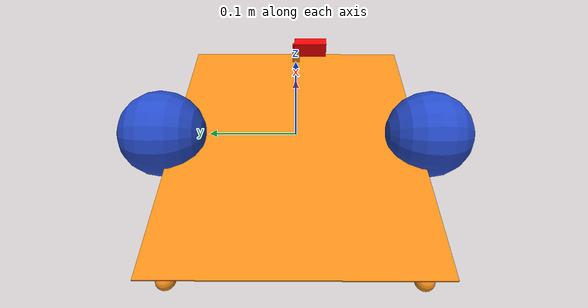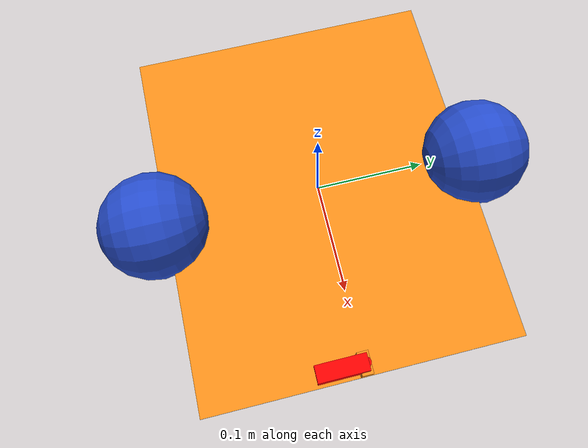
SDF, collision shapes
<sdf version='1.9'>
  <model name='gdgu_robot'>
    <link name='base_link'>
      <inertial>
        <pose>0.0422115384615384 0 -0.01259615384615384 0 0 0</pose>
        <mass>1.04</mass>
        <inertia>
          <ixx>0.01051322371794872</ixx>
          <ixy>0</ixy>
          <ixz>-0.0012019711538461531</ixz>
          <iyy>0.038237637179487208</iyy>
          <iyz>0</iyz>
          <izz>0.048496013461538499</izz>
        </inertia>
      </inertial>
      <collision name='base_link_fixed_joint_lump__chassis_link_collision'>
        <pose>0 0 -0.009000000000000001 0 0 0</pose>
        <geometry>
          <box>
            <size>0.35 0.29 0.002</size>
          </box>
        </geometry>
        <surface>
          <contact>
            <ode/>
          </contact>
          <friction>
            <ode/>
          </friction>
        </surface>
      </collision>
      <collision name='base_link_fixed_joint_lump__caster_wheel1_link_collision_1'>
        <pose>-0.16 0.125 -0.04 0 0 0</pose>
        <geometry>
          <sphere>
            <radius>0.01</radius>
          </sphere>
        </geometry>
        <surface>
          <contact>
            <ode/>
          </contact>
          <friction>
            <ode>
              <mu>0.001</mu>
              <mu2>0.001</mu2>
            </ode>
          </friction>
        </surface>
      </collision>
      <collision name='base_link_fixed_joint_lump__connector_cw1_link_collision_2'>
        <pose>-0.16 0.125 -0.02 0 0 0</pose>
        <geometry>
          <cylinder>
            <length>0.021999999999999999</length>
            <radius>0.0050000000000000001</radius>
          </cylinder>
        </geometry>
      </collision>
      <collision name='base_link_fixed_joint_lump__caster_wheel2_link_collision_3'>
        <pose>-0.16 -0.125 -0.04 0 0 0</pose>
        <geometry>
          <sphere>
            <radius>0.01</radius>
          </sphere>
        </geometry>
        <surface>
          <contact>
            <ode/>
          </contact>
          <friction>
            <ode>
              <mu>0.001</mu>
              <mu2>0.001</mu2>
            </ode>
          </friction>
        </surface>
      </collision>
      <collision name='base_link_fixed_joint_lump__connector_cw2_link_collision_4'>
        <pose>-0.16 -0.125 -0.02 0 0 0</pose>
        <geometry>
          <cylinder>
            <length>0.021999999999999999</length>
            <radius>0.0050000000000000001</radius>
          </cylinder>
        </geometry>
      </collision>
      <collision name='base_link_fixed_joint_lump__caster_wheel3_link_collision_5'>
        <pose>0.13 0.125 -0.04 0 0 0</pose>
        <geometry>
          <sphere>
            <radius>0.01</radius>
          </sphere>
        </geometry>
        <surface>
          <contact>
            <ode/>
          </contact>
          <friction>
            <ode>
              <mu>0.001</mu>
              <mu2>0.001</mu2>
            </ode>
          </friction>
        </surface>
      </collision>
      <collision name='base_link_fixed_joint_lump__connector_cw3_link_collision_6'>
        <pose>0.13 0.125 -0.02 0 0 0</pose>
        <geometry>
          <cylinder>
            <length>0.021999999999999999</length>
            <radius>0.0050000000000000001</radius>
          </cylinder>
        </geometry>
      </collision>
      <collision name='base_link_fixed_joint_lump__caster_wheel4_link_collision_7'>
        <pose>0.13 -0.125 -0.04 0 0 0</pose>
        <geometry>
          <sphere>
            <radius>0.01</radius>
          </sphere>
        </geometry>
        <surface>
          <contact>
            <ode/>
          </contact>
          <friction>
            <ode>
              <mu>0.001</mu>
              <mu2>0.001</mu2>
            </ode>
          </friction>
        </surface>
      </collision>
      <collision name='base_link_fixed_joint_lump__connector_cw4_link_collision_8'>
        <pose>0.13 -0.125 -0.02 0 0 0</pose>
        <geometry>
          <cylinder>
            <length>0.021999999999999999</length>
            <radius>0.0050000000000000001</radius>
          </cylinder>
        </geometry>
      </collision>
      <collision name='base_link_fixed_joint_lump__stepper_link_collision_9'>
        <pose>0.165 0 0 0 0 0</pose>
        <geometry>
          <box>
            <size>0.02 0.01 0.02</size>
          </box>
        </geometry>
        <surface>
          <contact>
            <ode/>
          </contact>
          <friction>
            <ode/>
          </friction>
        </surface>
      </collision>
      <visual name='base_link_fixed_joint_lump__chassis_link_visual'>
        <pose>0 0 -0.009000000000000001 0 0 0</pose>
        <geometry>
          <box>
            <size>0.35 0.29 0.002</size>
          </box>
        </geometry>
        <material>
          <script>
            <name>Gazebo/Orange</name>
            <uri>file://media/materials/scripts/gazebo.material</uri>
          </script>
          <diffuse>1 0.375 0.125 1</diffuse>
          <ambient>1 0.375 0.125 1</ambient>
        </material>
      </visual>
      <visual name='base_link_fixed_joint_lump__caster_wheel1_link_visual_1'>
        <pose>-0.16 0.125 -0.04 0 0 0</pose>
        <geometry>
          <sphere>
            <radius>0.01</radius>
          </sphere>
        </geometry>
        <material>
          <script>
            <name>Gazebo/Red</name>
            <uri>file://media/materials/scripts/gazebo.material</uri>
          </script>
          <diffuse>1 1 1 1</diffuse>
          <ambient>1 1 1 1</ambient>
        </material>
      </visual>
      <visual name='base_link_fixed_joint_lump__connector_cw1_link_visual_2'>
        <pose>-0.16 0.125 -0.02 0 0 0</pose>
        <geometry>
          <cylinder>
            <length>0.021999999999999999</length>
            <radius>0.0050000000000000001</radius>
          </cylinder>
        </geometry>
        <material>
          <diffuse>0 0 0 1</diffuse>
          <ambient>0 0 0 1</ambient>
        </material>
      </visual>
      <visual name='base_link_fixed_joint_lump__caster_wheel2_link_visual_3'>
        <pose>-0.16 -0.125 -0.04 0 0 0</pose>
        <geometry>
          <sphere>
            <radius>0.01</radius>
          </sphere>
        </geometry>
        <material>
          <script>
            <name>Gazebo/Red</name>
            <uri>file://media/materials/scripts/gazebo.material</uri>
          </script>
          <diffuse>1 1 1 1</diffuse>
          <ambient>1 1 1 1</ambient>
        </material>
      </visual>
      <visual name='base_link_fixed_joint_lump__connector_cw2_link_visual_4'>
        <pose>-0.16 -0.125 -0.02 0 0 0</pose>
        <geometry>
          <cylinder>
            <length>0.021999999999999999</length>
            <radius>0.0050000000000000001</radius>
          </cylinder>
        </geometry>
        <material>
          <diffuse>0 0 0 1</diffuse>
          <ambient>0 0 0 1</ambient>
        </material>
      </visual>
      <visual name='base_link_fixed_joint_lump__caster_wheel3_link_visual_5'>
        <pose>0.13 0.125 -0.04 0 0 0</pose>
        <geometry>
          <sphere>
            <radius>0.01</radius>
          </sphere>
        </geometry>
        <material>
          <script>
            <name>Gazebo/Red</name>
            <uri>file://media/materials/scripts/gazebo.material</uri>
          </script>
          <diffuse>1 1 1 1</diffuse>
          <ambient>1 1 1 1</ambient>
        </material>
      </visual>
      <visual name='base_link_fixed_joint_lump__connector_cw3_link_visual_6'>
        <pose>0.13 0.125 -0.02 0 0 0</pose>
        <geometry>
          <cylinder>
            <length>0.021999999999999999</length>
            <radius>0.0050000000000000001</radius>
          </cylinder>
        </geometry>
        <material>
          <diffuse>0 0 0 1</diffuse>
          <ambient>0 0 0 1</ambient>
        </material>
      </visual>
      <visual name='base_link_fixed_joint_lump__caster_wheel4_link_visual_7'>
        <pose>0.13 -0.125 -0.04 0 0 0</pose>
        <geometry>
          <sphere>
            <radius>0.01</radius>
          </sphere>
        </geometry>
        <material>
          <script>
            <name>Gazebo/Red</name>
            <uri>file://media/materials/scripts/gazebo.material</uri>
          </script>
          <diffuse>1 1 1 1</diffuse>
          <ambient>1 1 1 1</ambient>
        </material>
      </visual>
      <visual name='base_link_fixed_joint_lump__connector_cw4_link_visual_8'>
        <pose>0.13 -0.125 -0.02 0 0 0</pose>
        <geometry>
          <cylinder>
            <length>0.021999999999999999</length>
            <radius>0.0050000000000000001</radius>
          </cylinder>
        </geometry>
        <material>
          <diffuse>0 0 0 1</diffuse>
          <ambient>0 0 0 1</ambient>
        </material>
      </visual>
      <visual name='base_link_fixed_joint_lump__stepper_link_visual_9'>
        <pose>0.165 0 0 0 0 0</pose>
        <geometry>
          <box>
            <size>0.02 0.02 0.01</size>
          </box>
        </geometry>
        <material>
          <script>
            <name>Gazebo/Green</name>
            <uri>file://media/materials/scripts/gazebo.material</uri>
          </script>
          <diffuse>0.125 0.25 1 1</diffuse>
          <ambient>0.125 0.25 1 1</ambient>
        </material>
      </visual>
    </link>
    <joint name='rotor_joint' type='revolute'>
      <pose relative_to='base_link'>0.165 0 0.01 0 0 0</pose>
      <parent>base_link</parent>
      <child>rotor_link</child>
      <axis>
        <xyz>0 0 1</xyz>
        <limit>
          <lower>-0.65449999999999997</lower>
          <upper>0.65449999999999997</upper>
          <effort>1</effort>
          <velocity>0.5</velocity>
        </limit>
        <dynamics>
          <spring_reference>0</spring_reference>
          <spring_stiffness>0</spring_stiffness>
        </dynamics>
      </axis>
    </joint>
    <link name='rotor_link'>
      <pose relative_to='rotor_joint'>0 0 0 0 0 0</pose>
      <inertial>
        <pose>1.447866287715299e-05 -0.01818182971156783 -0.01727272150785154 0 0 0</pose>
        <mass>0.11</mass>
        <inertia>
          <ixx>0.00051090616456135054</ixx>
          <ixy>2.8969924449557942e-09</ixy>
          <ixz>-2.6912177539044742e-06</ixz>
          <iyy>0.0038875846516195629</iyy>
          <iyz>-5.4561280044453713e-06</iyz>
          <izz>0.0038850022210399661</izz>
        </inertia>
      </inertial>
      <collision name='rotor_link_collision'>
        <pose>0 0 0 0 0 0</pose>
        <geometry>
          <cylinder>
            <length>0.01</length>
            <radius>0.0050000000000000001</radius>
          </cylinder>
        </geometry>
      </collision>
      <collision name='rotor_link_fixed_joint_lump__ultrasonic_link_collision_1'>
        <pose>0 -0.02 0 1.57 -5.551115123125783e-17 1.57</pose>
        <geometry>
          <box>
            <size>0.045 0.02 0.015</size>
          </box>
        </geometry>
      </collision>
      <visual name='rotor_link_visual'>
        <pose>0 0 0 0 0 0</pose>
        <geometry>
          <cylinder>
            <length>0.01</length>
            <radius>0.0050000000000000001</radius>
          </cylinder>
        </geometry>
        <material>
          <diffuse>1 0 0 1</diffuse>
          <ambient>1 0 0 1</ambient>
        </material>
      </visual>
      <visual name='rotor_link_fixed_joint_lump__ultrasonic_link_visual_1'>
        <pose>0 -0.02 0 1.57 -5.551115123125783e-17 1.57</pose>
        <geometry>
          <mesh>
            <scale>0.001 0.0004 0.0009</scale>
            <uri>package://gdgu_robot/meshes/ULTRASONIC_INFRARED.STL</uri>
          </mesh>
        </geometry>
        <material>
          <diffuse>0.125 0.25 1 1</diffuse>
          <ambient>0.125 0.25 1 1</ambient>
        </material>
      </visual>
      <sensor name='ultrasonic' type='gpu_lidar'>
        <update_rate>5</update_rate>
        <always_on>true</always_on>
        <visualize>true</visualize>
        <topic>ultrasonic_sensor</topic>
        <ray>
          <scan>
            <horizontal>
              <samples>1</samples>
              <resolution>1</resolution>
              <min_angle>0</min_angle>
              <max_angle>15</max_angle>
            </horizontal>
          </scan>
          <range>
            <min>0.029999999999999999</min>
            <max>0.40000000000000002</max>
            <resolution>0.02</resolution>
          </range>
          <noise>
            <type>gaussian</type>
            <mean>0.10000000000000001</mean>
            <stddev>0.0050000000000000001</stddev>
          </noise>
        </ray>
        <pose>0.0498805 -0.0200397 0.15004 1.57 -5.55112e-17 1.57</pose>
      </sensor>
    </link>
    <joint name='left_wheel' type='revolute'>
      <pose relative_to='base_link'>0 0.155 0 -1.570796326794896 0 0</pose>
      <parent>base_link</parent>
      <child>lfw_link</child>
      <axis>
        <xyz>0 0 1</xyz>
        <limit>
          <lower>-10000000000000000</lower>
          <upper>10000000000000000</upper>
        </limit>
        <dynamics>
          <spring_reference>0</spring_reference>
          <spring_stiffness>0</spring_stiffness>
        </dynamics>
      </axis>
    </joint>
    <link name='lfw_link'>
      <pose relative_to='left_wheel'>0 0 0 0 0 0</pose>
      <inertial>
        <pose>0 0 0 0 0 0</pose>
        <mass>0.5</mass>
        <inertia>
          <ixx>0.00032916666666666668</ixx>
          <ixy>0</ixy>
          <ixz>0</ixz>
          <iyy>0.00032916666666666668</iyy>
          <iyz>0</iyz>
          <izz>0.00062500000000000012</izz>
        </inertia>
      </inertial>
      <collision name='lfw_link_collision'>
        <pose>0 0 0 0 0 0</pose>
        <geometry>
          <sphere>
            <radius>0.050000000000000003</radius>
          </sphere>
        </geometry>
        <surface>
          <contact>
            <ode/>
          </contact>
          <friction>
            <ode/>
          </friction>
        </surface>
      </collision>
      <visual name='lfw_link_visual'>
        <pose>0 0 0 0 0 0</pose>
        <geometry>
          <cylinder>
            <length>0.02</length>
            <radius>0.050000000000000003</radius>
          </cylinder>
        </geometry>
        <material>
          <script>
            <name>Gazebo/Blue</name>
            <uri>file://media/materials/scripts/gazebo.material</uri>
          </script>
          <diffuse>0.25 0.25 1 1</diffuse>
          <ambient>0.25 0.25 1 1</ambient>
        </material>
      </visual>
    </link>
    <joint name='right_wheel' type='revolute'>
      <pose relative_to='base_link'>0 -0.155 0 1.570796326794896 0 0</pose>
      <parent>base_link</parent>
      <child>rfw_link</child>
      <axis>
        <xyz>0 0 -1</xyz>
        <limit>
          <lower>-10000000000000000</lower>
          <upper>10000000000000000</upper>
        </limit>
        <dynamics>
          <spring_reference>0</spring_reference>
          <spring_stiffness>0</spring_stiffness>
        </dynamics>
      </axis>
    </joint>
    <link name='rfw_link'>
      <pose relative_to='right_wheel'>0 0 0 0 0 0</pose>
      <inertial>
        <pose>0 0 0 0 0 0</pose>
        <mass>0.5</mass>
        <inertia>
          <ixx>0.00032916666666666668</ixx>
          <ixy>0</ixy>
          <ixz>0</ixz>
          <iyy>0.00032916666666666668</iyy>
          <iyz>0</iyz>
          <izz>0.00062500000000000012</izz>
        </inertia>
      </inertial>
      <collision name='rfw_link_collision'>
        <pose>0 0 0 0 0 0</pose>
        <geometry>
          <sphere>
            <radius>0.050000000000000003</radius>
          </sphere>
        </geometry>
        <surface>
          <contact>
            <ode/>
          </contact>
          <friction>
            <ode/>
          </friction>
        </surface>
      </collision>
      <visual name='rfw_link_visual'>
        <pose>0 0 0 0 0 0</pose>
        <geometry>
          <cylinder>
            <length>0.02</length>
            <radius>0.050000000000000003</radius>
          </cylinder>
        </geometry>
        <material>
          <script>
            <name>Gazebo/Blue</name>
            <uri>file://media/materials/scripts/gazebo.material</uri>
          </script>
          <diffuse>0.25 0.25 1 1</diffuse>
          <ambient>0.25 0.25 1 1</ambient>
        </material>
      </visual>
    </link>
    <plugin name='gz::sim::systems::DiffDrive' filename='gz-sim-diff-drive-system'>
      <ros>
        <remapping>cmd_vel:=/cmd_vel</remapping>
        <remapping>odom:=/odom</remapping>
      </ros>
      <left_joint>left_wheel</left_joint>
      <right_joint>right_wheel</right_joint>
      <wheel_separation>0.31</wheel_separation>
      <wheel_radius>0.05</wheel_radius>
      <odom_publish_frequency>100</odom_publish_frequency>
      <topic>cmd_vel</topic>
      <odom_topic>odom</odom_topic>
      <frame_id>odom</frame_id>
      <child_frame_id>base_link</child_frame_id>
      <max_linear_accelaration>1</max_linear_accelaration>
    </plugin>
    <plugin name='gz::sim::systems::JointStatePublisher' filename='gz-sim-joint-state-publisher-system'>
      <topic>joint_states</topic>
      <joint_name>left_wheel</joint_name>
      <joint_name>right_wheel</joint_name>
      <joint_name>rotor_joint</joint_name>
    </plugin>
    <frame name='base_footprint_joint' attached_to='base_link'>
      <pose>0 0 0 0 -0 0</pose>
    </frame>
    <frame name='base_footprint' attached_to='base_footprint_joint'/>
    <frame name='connector_cw1_joint' attached_to='caster_wheel1_link'>
      <pose>0 0 0.02 0 -0 0</pose>
    </frame>
    <frame name='connector_cw1_link' attached_to='connector_cw1_joint'/>
    <frame name='caster_wheel1_joint' attached_to='chassis_link'>
      <pose>0.015 0.125 -0.03 0 -0 0</pose>
    </frame>
    <frame name='caster_wheel1_link' attached_to='caster_wheel1_joint'/>
    <frame name='connector_cw2_joint' attached_to='caster_wheel2_link'>
      <pose>0 0 0.02 0 -0 0</pose>
    </frame>
    <frame name='connector_cw2_link' attached_to='connector_cw2_joint'/>
    <frame name='caster_wheel2_joint' attached_to='chassis_link'>
      <pose>0.015 -0.125 -0.03 0 -0 0</pose>
    </frame>
    <frame name='caster_wheel2_link' attached_to='caster_wheel2_joint'/>
    <frame name='connector_cw3_joint' attached_to='caster_wheel3_link'>
      <pose>0 0 0.02 0 -0 0</pose>
    </frame>
    <frame name='connector_cw3_link' attached_to='connector_cw3_joint'/>
    <frame name='caster_wheel3_joint' attached_to='chassis_link'>
      <pose>0.305 0.125 -0.03 0 -0 0</pose>
    </frame>
    <frame name='caster_wheel3_link' attached_to='caster_wheel3_joint'/>
    <frame name='connector_cw4_joint' attached_to='caster_wheel4_link'>
      <pose>0 0 0.02 0 -0 0</pose>
    </frame>
    <frame name='connector_cw4_link' attached_to='connector_cw4_joint'/>
    <frame name='caster_wheel4_joint' attached_to='chassis_link'>
      <pose>0.305 -0.125 -0.03 0 -0 0</pose>
    </frame>
    <frame name='caster_wheel4_link' attached_to='caster_wheel4_joint'/>
    <frame name='stepper_joint' attached_to='chassis_link'>
      <pose>0.34 0 0.01 0 -0 0</pose>
    </frame>
    <frame name='stepper_link' attached_to='stepper_joint'/>
    <frame name='ray_joint' attached_to='ultrasonic_link'>
      <pose>0 0.15 0.05 0 -0 0</pose>
    </frame>
    <frame name='ray_link' attached_to='ray_joint'/>
    <frame name='ultrasonic_joint' attached_to='rotor_link'>
      <pose>0 -0.02 0 1.57 -0 1.57</pose>
    </frame>
    <frame name='ultrasonic_link' attached_to='ultrasonic_joint'/>
    <frame name='chassis_joint' attached_to='base_link'>
      <pose>-0.175 0 -0.01 0 -0 0</pose>
    </frame>
    <frame name='chassis_link' attached_to='chassis_joint'/>
  </model>
</sdf>
